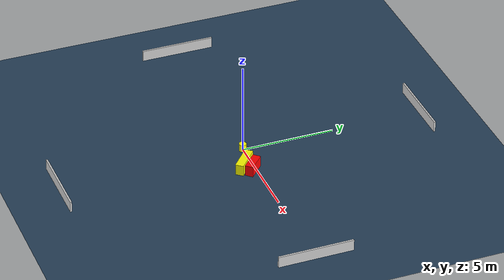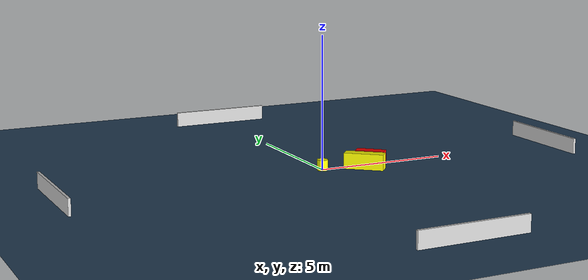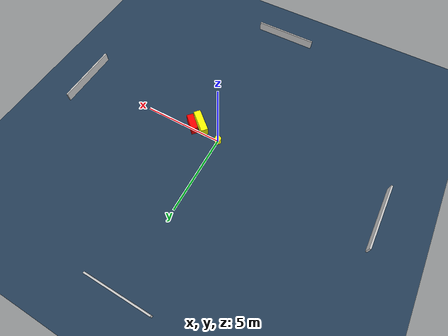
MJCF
<?xml version="1.0" ?>
<mujoco model="generated_environment">
  <option timestep="0.01" integrator="RK4" cone="elliptic"/>
  <default>
    <geom density="1"/>
  </default>
  <asset>
    <texture builtin="gradient" height="3072" name="skybox" rgb1="0.3 0.5 0.7" rgb2="0 0 0" type="skybox" width="512"/>
    <texture builtin="checker" height="300" name="groundplane" rgb1="0.2 0.3 0.4" rgb2="0.1 0.2 0.3" type="2d" width="300"/>
    <material name="groundplane" reflectance="0.2" texrepeat="5 5" texture="groundplane"/>
  </asset>
  <worldbody>
    <light dir="0 0 -1" directional="true" pos="0 0 1.5"/>
    <geom condim="3" friction="0.5 0.005 0.001" material="groundplane" name="floor" pos="0 0 0" size="0 0 0.05" type="plane"/>
    <body name="walls">
      <geom name="wall_1" condim="4" pos="-10.0 0.0 0.3" rgba="0.800000011920929 0.800000011920929 0.800000011920929 1.0" size="0.05 2.0 0.3" type="box"/>
      <geom name="wall_2" condim="4" pos="10.0 0.0 0.3" rgba="0.800000011920929 0.800000011920929 0.800000011920929 1.0" size="0.05 2.0 0.3" type="box"/>
      <geom name="wall_3" condim="4" pos="0.0 -10.0 0.3" rgba="0.800000011920929 0.800000011920929 0.800000011920929 1.0" size="2.0 0.05 0.3" type="box"/>
      <geom name="wall_4" condim="4" pos="0.0 10.0 0.3" rgba="0.800000011920929 0.800000011920929 0.800000011920929 1.0" size="2.0 0.05 0.3" type="box"/>
    </body>
    <body name="robot">
      <joint name="joint_x" type="slide" pos="0 0 0" axis="1 0 0"/>
      <joint name="joint_y" type="slide" pos="0 0 0" axis="0 1 0"/>
      <geom name="robot" type="cylinder" pos="0.0 0.0 0.2" size="0.2 0.2 0.0" mass="5.0" friction="1.0 0.005 0.0001" condim="4" rgba="1.0 1.0 0.0 1.0"/>
    </body>
    <body name="obstacle_1_movable">
      <geom name="obstacle_1_movable" condim="4" pos="1.49683794459994 -0.4931565076315866 0.3" euler="0 0 49.21535647226566" friction="0.0 0.005 0.001" rgba="1.0 1.0 0.0 1.0" size="0.2185900387046442 0.7411074624795431 0.3" type="box" mass="0.1"/>
      <joint type="free"/>
    </body>
    <body name="obstacle_2_static">
      <geom name="obstacle_2_static" condim="4" pos="1.9169639192983634 -0.18029870944967052 0.3" euler="0 0 227.2493133628359" friction="0.0 0.005 0.001" rgba="1.0 0.0 0.0 1.0" size="0.2139116695195726 0.5418671682993839 0.3" type="box"/>
    </body>
  </worldbody>
  <actuator>
    <motor name="actuator_x" joint="joint_x" gear="1" ctrlrange="-1 1"/>
    <motor name="actuator_y" joint="joint_y" gear="1" ctrlrange="-1 1"/>
  </actuator>
</mujoco>
